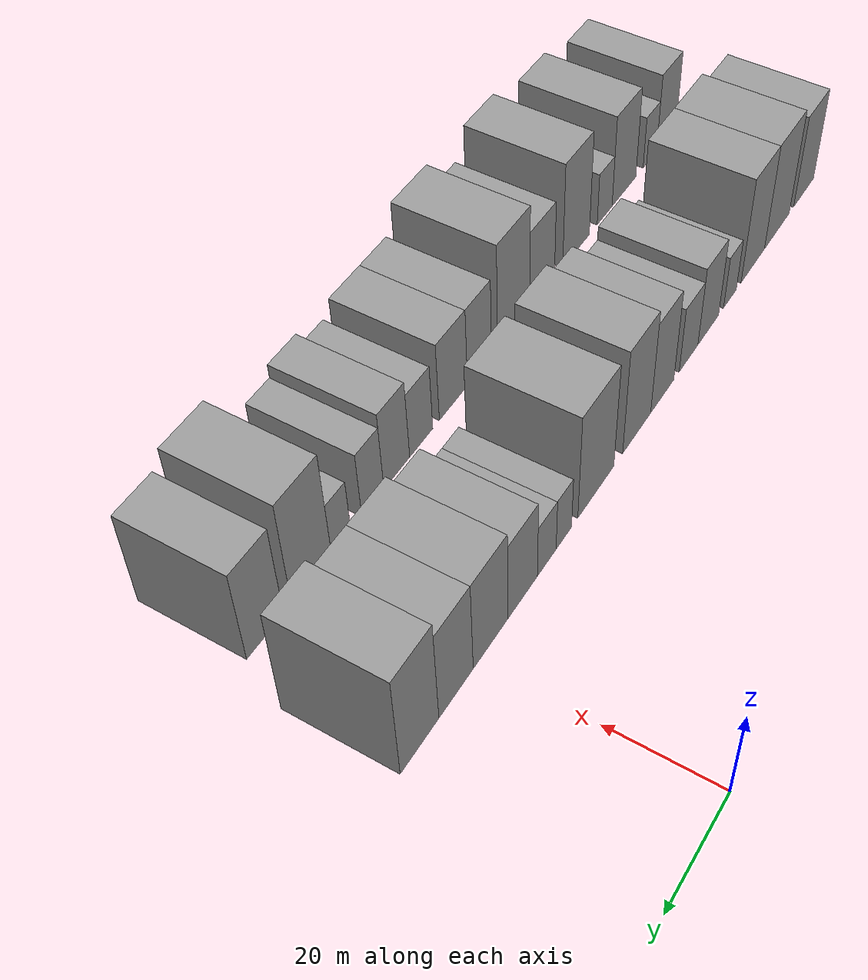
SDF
<sdf version="1.6">
 <world name="default">
  <model name="building_17">
   <static>1</static>
   <pose>50.0000 -116.8223 0 0.000000 0.000000 0.000000</pose>
   <link name="link">
    <pose>0 0 10.50 0 0 0</pose>
    <collision name="collision"><geometry><box><size>20.0000 9.1821 21.0000</size></box></geometry></collision>
    <visual name="visual">
     <cast_shadows>0</cast_shadows>
     <geometry><box><size>20.0000 9.1821 21.0000</size></box></geometry>
     <material>
      <script>
       <uri>model://grey_wall/materials/scripts</uri>
       <uri>model://grey_wall/materials/textures</uri>
       <name>vrc/grey_wall</name>
      </script>
     </material>
    </visual>
   </link>
  </model>
  <model name="building_18">
   <static>1</static>
   <pose>50.0000 -104.7328 0 0.000000 0.000000 0.000000</pose>
   <link name="link">
    <pose>0 0 12.00 0 0 0</pose>
    <collision name="collision"><geometry><box><size>20.0000 10.9970 24.0000</size></box></geometry></collision>
    <visual name="visual">
     <cast_shadows>0</cast_shadows>
     <geometry><box><size>20.0000 10.9970 24.0000</size></box></geometry>
     <material>
      <script>
       <uri>model://grey_wall/materials/scripts</uri>
       <uri>model://grey_wall/materials/textures</uri>
       <name>vrc/grey_wall</name>
      </script>
     </material>
    </visual>
   </link>
  </model>
  <model name="building_19">
   <static>1</static>
   <pose>50.0000 -94.2725 0 0.000000 0.000000 0.000000</pose>
   <link name="link">
    <pose>0 0 12.00 0 0 0</pose>
    <collision name="collision"><geometry><box><size>20.0000 9.9236 24.0000</size></box></geometry></collision>
    <visual name="visual">
     <cast_shadows>0</cast_shadows>
     <geometry><box><size>20.0000 9.9236 24.0000</size></box></geometry>
     <material>
      <script>
       <uri>model://grey_wall/materials/scripts</uri>
       <uri>model://grey_wall/materials/textures</uri>
       <name>vrc/grey_wall</name>
      </script>
     </material>
    </visual>
   </link>
  </model>
  <model name="building_20">
   <static>1</static>
   <pose>50.0000 -84.7162 0 0.000000 0.000000 0.000000</pose>
   <link name="link">
    <pose>0 0 6.00 0 0 0</pose>
    <collision name="collision"><geometry><box><size>20.0000 5.1888 12.0000</size></box></geometry></collision>
    <visual name="visual">
     <cast_shadows>0</cast_shadows>
     <geometry><box><size>20.0000 5.1888 12.0000</size></box></geometry>
     <material>
      <script>
       <uri>model://grey_wall/materials/scripts</uri>
       <uri>model://grey_wall/materials/textures</uri>
       <name>vrc/grey_wall</name>
      </script>
     </material>
    </visual>
   </link>
  </model>
  <model name="building_21">
   <static>1</static>
   <pose>50.0000 -76.0519 0 0.000000 0.000000 0.000000</pose>
   <link name="link">
    <pose>0 0 9.00 0 0 0</pose>
    <collision name="collision"><geometry><box><size>20.0000 8.1398 18.0000</size></box></geometry></collision>
    <visual name="visual">
     <cast_shadows>0</cast_shadows>
     <geometry><box><size>20.0000 8.1398 18.0000</size></box></geometry>
     <material>
      <script>
       <uri>model://grey_wall/materials/scripts</uri>
       <uri>model://grey_wall/materials/textures</uri>
       <name>vrc/grey_wall</name>
      </script>
     </material>
    </visual>
   </link>
  </model>
  <model name="building_22">
   <static>1</static>
   <pose>50.0000 -68.4234 0 0.000000 0.000000 0.000000</pose>
   <link name="link">
    <pose>0 0 7.50 0 0 0</pose>
    <collision name="collision"><geometry><box><size>20.0000 7.1172 15.0000</size></box></geometry></collision>
    <visual name="visual">
     <cast_shadows>0</cast_shadows>
     <geometry><box><size>20.0000 7.1172 15.0000</size></box></geometry>
     <material>
      <script>
       <uri>model://grey_wall/materials/scripts</uri>
       <uri>model://grey_wall/materials/textures</uri>
       <name>vrc/grey_wall</name>
      </script>
     </material>
    </visual>
   </link>
  </model>
  <model name="building_23">
   <static>1</static>
   <pose>50.0000 -58.6308 0 0.000000 0.000000 0.000000</pose>
   <link name="link">
    <pose>0 0 10.50 0 0 0</pose>
    <collision name="collision"><geometry><box><size>20.0000 8.4679 21.0000</size></box></geometry></collision>
    <visual name="visual">
     <cast_shadows>0</cast_shadows>
     <geometry><box><size>20.0000 8.4679 21.0000</size></box></geometry>
     <material>
      <script>
       <uri>model://grey_wall/materials/scripts</uri>
       <uri>model://grey_wall/materials/textures</uri>
       <name>vrc/grey_wall</name>
      </script>
     </material>
    </visual>
   </link>
  </model>
  <model name="building_24">
   <static>1</static>
   <pose>50.0000 -49.4877 0 0.000000 0.000000 0.000000</pose>
   <link name="link">
    <pose>0 0 12.00 0 0 0</pose>
    <collision name="collision"><geometry><box><size>20.0000 9.8183 24.0000</size></box></geometry></collision>
    <visual name="visual">
     <cast_shadows>0</cast_shadows>
     <geometry><box><size>20.0000 9.8183 24.0000</size></box></geometry>
     <material>
      <script>
       <uri>model://grey_wall/materials/scripts</uri>
       <uri>model://grey_wall/materials/textures</uri>
       <name>vrc/grey_wall</name>
      </script>
     </material>
    </visual>
   </link>
  </model>
  <model name="building_25">
   <static>1</static>
   <pose>50.0000 -35.6482 0 0.000000 0.000000 0.000000</pose>
   <link name="link">
    <pose>0 0 12.00 0 0 0</pose>
    <collision name="collision"><geometry><box><size>20.0000 11.8606 24.0000</size></box></geometry></collision>
    <visual name="visual">
     <cast_shadows>0</cast_shadows>
     <geometry><box><size>20.0000 11.8606 24.0000</size></box></geometry>
     <material>
      <script>
       <uri>model://grey_wall/materials/scripts</uri>
       <uri>model://grey_wall/materials/textures</uri>
       <name>vrc/grey_wall</name>
      </script>
     </material>
    </visual>
   </link>
  </model>
  <model name="building_26">
   <static>1</static>
   <pose>50.0000 -25.2976 0 0.000000 0.000000 0.000000</pose>
   <link name="link">
    <pose>0 0 6.00 0 0 0</pose>
    <collision name="collision"><geometry><box><size>20.0000 4.8406 12.0000</size></box></geometry></collision>
    <visual name="visual">
     <cast_shadows>0</cast_shadows>
     <geometry><box><size>20.0000 4.8406 12.0000</size></box></geometry>
     <material>
      <script>
       <uri>model://grey_wall/materials/scripts</uri>
       <uri>model://grey_wall/materials/textures</uri>
       <name>vrc/grey_wall</name>
      </script>
     </material>
    </visual>
   </link>
  </model>
  <model name="building_27">
   <static>1</static>
   <pose>50.0000 -20.0082 0 0.000000 0.000000 0.000000</pose>
   <link name="link">
    <pose>0 0 6.00 0 0 0</pose>
    <collision name="collision"><geometry><box><size>20.0000 5.7383 12.0000</size></box></geometry></collision>
    <visual name="visual">
     <cast_shadows>0</cast_shadows>
     <geometry><box><size>20.0000 5.7383 12.0000</size></box></geometry>
     <material>
      <script>
       <uri>model://grey_wall/materials/scripts</uri>
       <uri>model://grey_wall/materials/textures</uri>
       <name>vrc/grey_wall</name>
      </script>
     </material>
    </visual>
   </link>
  </model>
  <model name="building_28">
   <static>1</static>
   <pose>50.0000 -12.7895 0 0.000000 0.000000 0.000000</pose>
   <link name="link">
    <pose>0 0 9.00 0 0 0</pose>
    <collision name="collision"><geometry><box><size>20.0000 8.6990 18.0000</size></box></geometry></collision>
    <visual name="visual">
     <cast_shadows>0</cast_shadows>
     <geometry><box><size>20.0000 8.6990 18.0000</size></box></geometry>
     <material>
      <script>
       <uri>model://grey_wall/materials/scripts</uri>
       <uri>model://grey_wall/materials/textures</uri>
       <name>vrc/grey_wall</name>
      </script>
     </material>
    </visual>
   </link>
  </model>
  <model name="building_29">
   <static>1</static>
   <pose>50.0000 -3.5440 0 0.000000 0.000000 0.000000</pose>
   <link name="link">
    <pose>0 0 10.50 0 0 0</pose>
    <collision name="collision"><geometry><box><size>20.0000 9.7920 21.0000</size></box></geometry></collision>
    <visual name="visual">
     <cast_shadows>0</cast_shadows>
     <geometry><box><size>20.0000 9.7920 21.0000</size></box></geometry>
     <material>
      <script>
       <uri>model://grey_wall/materials/scripts</uri>
       <uri>model://grey_wall/materials/textures</uri>
       <name>vrc/grey_wall</name>
      </script>
     </material>
    </visual>
   </link>
  </model>
  <model name="building_30">
   <static>1</static>
   <pose>50.0000 5.9721 0 0.000000 0.000000 0.000000</pose>
   <link name="link">
    <pose>0 0 10.50 0 0 0</pose>
    <collision name="collision"><geometry><box><size>20.0000 9.2402 21.0000</size></box></geometry></collision>
    <visual name="visual">
     <cast_shadows>0</cast_shadows>
     <geometry><box><size>20.0000 9.2402 21.0000</size></box></geometry>
     <material>
      <script>
       <uri>model://grey_wall/materials/scripts</uri>
       <uri>model://grey_wall/materials/textures</uri>
       <name>vrc/grey_wall</name>
      </script>
     </material>
    </visual>
   </link>
  </model>
  <model name="building_31">
   <static>1</static>
   <pose>50.0000 15.5483 0 0.000000 0.000000 0.000000</pose>
   <link name="link">
    <pose>0 0 12.00 0 0 0</pose>
    <collision name="collision"><geometry><box><size>20.0000 9.9122 24.0000</size></box></geometry></collision>
    <visual name="visual">
     <cast_shadows>0</cast_shadows>
     <geometry><box><size>20.0000 9.9122 24.0000</size></box></geometry>
     <material>
      <script>
       <uri>model://grey_wall/materials/scripts</uri>
       <uri>model://grey_wall/materials/textures</uri>
       <name>vrc/grey_wall</name>
      </script>
     </material>
    </visual>
   </link>
  </model>
  <model name="building_74">
   <static>1</static>
   <pose>79.0000 -117.6692 0 0.000000 0.000000 0.000000</pose>
   <link name="link">
    <pose>0 0 9.00 0 0 0</pose>
    <collision name="collision"><geometry><box><size>20.0000 8.2627 18.0000</size></box></geometry></collision>
    <visual name="visual">
     <cast_shadows>0</cast_shadows>
     <geometry><box><size>20.0000 8.2627 18.0000</size></box></geometry>
     <material>
      <script>
       <uri>model://grey_wall/materials/scripts</uri>
       <uri>model://grey_wall/materials/textures</uri>
       <name>vrc/grey_wall</name>
      </script>
     </material>
    </visual>
   </link>
  </model>
  <model name="building_75">
   <static>1</static>
   <pose>79.0000 -110.7485 0 0.000000 0.000000 0.000000</pose>
   <link name="link">
    <pose>0 0 6.00 0 0 0</pose>
    <collision name="collision"><geometry><box><size>20.0000 5.5786 12.0000</size></box></geometry></collision>
    <visual name="visual">
     <cast_shadows>0</cast_shadows>
     <geometry><box><size>20.0000 5.5786 12.0000</size></box></geometry>
     <material>
      <script>
       <uri>model://grey_wall/materials/scripts</uri>
       <uri>model://grey_wall/materials/textures</uri>
       <name>vrc/grey_wall</name>
      </script>
     </material>
    </visual>
   </link>
  </model>
  <model name="building_76">
   <static>1</static>
   <pose>79.0000 -100.2103 0 0.000000 0.000000 0.000000</pose>
   <link name="link">
    <pose>0 0 10.50 0 0 0</pose>
    <collision name="collision"><geometry><box><size>20.0000 9.4979 21.0000</size></box></geometry></collision>
    <visual name="visual">
     <cast_shadows>0</cast_shadows>
     <geometry><box><size>20.0000 9.4979 21.0000</size></box></geometry>
     <material>
      <script>
       <uri>model://grey_wall/materials/scripts</uri>
       <uri>model://grey_wall/materials/textures</uri>
       <name>vrc/grey_wall</name>
      </script>
     </material>
    </visual>
   </link>
  </model>
  <model name="building_77">
   <static>1</static>
   <pose>79.0000 -92.5706 0 0.000000 0.000000 0.000000</pose>
   <link name="link">
    <pose>0 0 6.00 0 0 0</pose>
    <collision name="collision"><geometry><box><size>20.0000 5.7816 12.0000</size></box></geometry></collision>
    <visual name="visual">
     <cast_shadows>0</cast_shadows>
     <geometry><box><size>20.0000 5.7816 12.0000</size></box></geometry>
     <material>
      <script>
       <uri>model://grey_wall/materials/scripts</uri>
       <uri>model://grey_wall/materials/textures</uri>
       <name>vrc/grey_wall</name>
      </script>
     </material>
    </visual>
   </link>
  </model>
  <model name="building_78">
   <static>1</static>
   <pose>79.0000 -81.7338 0 0.000000 0.000000 0.000000</pose>
   <link name="link">
    <pose>0 0 12.00 0 0 0</pose>
    <collision name="collision"><geometry><box><size>20.0000 9.8919 24.0000</size></box></geometry></collision>
    <visual name="visual">
     <cast_shadows>0</cast_shadows>
     <geometry><box><size>20.0000 9.8919 24.0000</size></box></geometry>
     <material>
      <script>
       <uri>model://grey_wall/materials/scripts</uri>
       <uri>model://grey_wall/materials/textures</uri>
       <name>vrc/grey_wall</name>
      </script>
     </material>
    </visual>
   </link>
  </model>
  <model name="building_79">
   <static>1</static>
   <pose>79.0000 -69.3966 0 0.000000 0.000000 0.000000</pose>
   <link name="link">
    <pose>0 0 9.00 0 0 0</pose>
    <collision name="collision"><geometry><box><size>20.0000 8.7825 18.0000</size></box></geometry></collision>
    <visual name="visual">
     <cast_shadows>0</cast_shadows>
     <geometry><box><size>20.0000 8.7825 18.0000</size></box></geometry>
     <material>
      <script>
       <uri>model://grey_wall/materials/scripts</uri>
       <uri>model://grey_wall/materials/textures</uri>
       <name>vrc/grey_wall</name>
      </script>
     </material>
    </visual>
   </link>
  </model>
  <model name="building_80">
   <static>1</static>
   <pose>79.0000 -59.5940 0 0.000000 0.000000 0.000000</pose>
   <link name="link">
    <pose>0 0 12.00 0 0 0</pose>
    <collision name="collision"><geometry><box><size>20.0000 10.8228 24.0000</size></box></geometry></collision>
    <visual name="visual">
     <cast_shadows>0</cast_shadows>
     <geometry><box><size>20.0000 10.8228 24.0000</size></box></geometry>
     <material>
      <script>
       <uri>model://grey_wall/materials/scripts</uri>
       <uri>model://grey_wall/materials/textures</uri>
       <name>vrc/grey_wall</name>
      </script>
     </material>
    </visual>
   </link>
  </model>
  <model name="building_81">
   <static>1</static>
   <pose>79.0000 -48.2941 0 0.000000 0.000000 0.000000</pose>
   <link name="link">
    <pose>0 0 9.00 0 0 0</pose>
    <collision name="collision"><geometry><box><size>20.0000 7.7771 18.0000</size></box></geometry></collision>
    <visual name="visual">
     <cast_shadows>0</cast_shadows>
     <geometry><box><size>20.0000 7.7771 18.0000</size></box></geometry>
     <material>
      <script>
       <uri>model://grey_wall/materials/scripts</uri>
       <uri>model://grey_wall/materials/textures</uri>
       <name>vrc/grey_wall</name>
      </script>
     </material>
    </visual>
   </link>
  </model>
  <model name="building_82">
   <static>1</static>
   <pose>79.0000 -40.0190 0 0.000000 0.000000 0.000000</pose>
   <link name="link">
    <pose>0 0 9.00 0 0 0</pose>
    <collision name="collision"><geometry><box><size>20.0000 8.7730 18.0000</size></box></geometry></collision>
    <visual name="visual">
     <cast_shadows>0</cast_shadows>
     <geometry><box><size>20.0000 8.7730 18.0000</size></box></geometry>
     <material>
      <script>
       <uri>model://grey_wall/materials/scripts</uri>
       <uri>model://grey_wall/materials/textures</uri>
       <name>vrc/grey_wall</name>
      </script>
     </material>
    </visual>
   </link>
  </model>
  <model name="building_83">
   <static>1</static>
   <pose>79.0000 -30.1879 0 0.000000 0.000000 0.000000</pose>
   <link name="link">
    <pose>0 0 7.50 0 0 0</pose>
    <collision name="collision"><geometry><box><size>20.0000 6.8894 15.0000</size></box></geometry></collision>
    <visual name="visual">
     <cast_shadows>0</cast_shadows>
     <geometry><box><size>20.0000 6.8894 15.0000</size></box></geometry>
     <material>
      <script>
       <uri>model://grey_wall/materials/scripts</uri>
       <uri>model://grey_wall/materials/textures</uri>
       <name>vrc/grey_wall</name>
      </script>
     </material>
    </visual>
   </link>
  </model>
  <model name="building_84">
   <static>1</static>
   <pose>79.0000 -23.0122 0 0.000000 0.000000 0.000000</pose>
   <link name="link">
    <pose>0 0 9.00 0 0 0</pose>
    <collision name="collision"><geometry><box><size>20.0000 7.4620 18.0000</size></box></geometry></collision>
    <visual name="visual">
     <cast_shadows>0</cast_shadows>
     <geometry><box><size>20.0000 7.4620 18.0000</size></box></geometry>
     <material>
      <script>
       <uri>model://grey_wall/materials/scripts</uri>
       <uri>model://grey_wall/materials/textures</uri>
       <name>vrc/grey_wall</name>
      </script>
     </material>
    </visual>
   </link>
  </model>
  <model name="building_85">
   <static>1</static>
   <pose>79.0000 -16.1955 0 0.000000 0.000000 0.000000</pose>
   <link name="link">
    <pose>0 0 7.50 0 0 0</pose>
    <collision name="collision"><geometry><box><size>20.0000 6.1713 15.0000</size></box></geometry></collision>
    <visual name="visual">
     <cast_shadows>0</cast_shadows>
     <geometry><box><size>20.0000 6.1713 15.0000</size></box></geometry>
     <material>
      <script>
       <uri>model://grey_wall/materials/scripts</uri>
       <uri>model://grey_wall/materials/textures</uri>
       <name>vrc/grey_wall</name>
      </script>
     </material>
    </visual>
   </link>
  </model>
  <model name="building_86">
   <static>1</static>
   <pose>79.0000 -7.5090 0 0.000000 0.000000 0.000000</pose>
   <link name="link">
    <pose>0 0 6.00 0 0 0</pose>
    <collision name="collision"><geometry><box><size>20.0000 5.2017 12.0000</size></box></geometry></collision>
    <visual name="visual">
     <cast_shadows>0</cast_shadows>
     <geometry><box><size>20.0000 5.2017 12.0000</size></box></geometry>
     <material>
      <script>
       <uri>model://grey_wall/materials/scripts</uri>
       <uri>model://grey_wall/materials/textures</uri>
       <name>vrc/grey_wall</name>
      </script>
     </material>
    </visual>
   </link>
  </model>
  <model name="building_87">
   <static>1</static>
   <pose>79.0000 0.2787 0 0.000000 0.000000 0.000000</pose>
   <link name="link">
    <pose>0 0 12.00 0 0 0</pose>
    <collision name="collision"><geometry><box><size>20.0000 10.3739 24.0000</size></box></geometry></collision>
    <visual name="visual">
     <cast_shadows>0</cast_shadows>
     <geometry><box><size>20.0000 10.3739 24.0000</size></box></geometry>
     <material>
      <script>
       <uri>model://grey_wall/materials/scripts</uri>
       <uri>model://grey_wall/materials/textures</uri>
       <name>vrc/grey_wall</name>
      </script>
     </material>
    </visual>
   </link>
  </model>
  <model name="building_88">
   <static>1</static>
   <pose>79.0000 11.9833 0 0.000000 0.000000 0.000000</pose>
   <link name="link">
    <pose>0 0 10.50 0 0 0</pose>
    <collision name="collision"><geometry><box><size>20.0000 9.0353 21.0000</size></box></geometry></collision>
    <visual name="visual">
     <cast_shadows>0</cast_shadows>
     <geometry><box><size>20.0000 9.0353 21.0000</size></box></geometry>
     <material>
      <script>
       <uri>model://grey_wall/materials/scripts</uri>
       <uri>model://grey_wall/materials/textures</uri>
       <name>vrc/grey_wall</name>
      </script>
     </material>
    </visual>
   </link>
  </model>
 </world>
</sdf>
